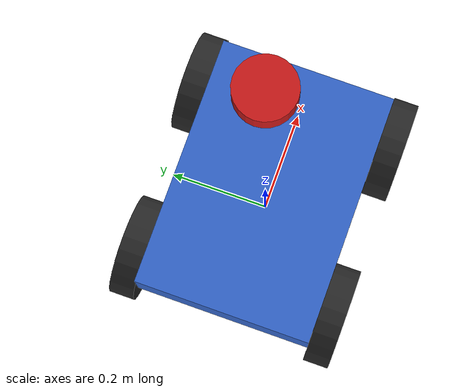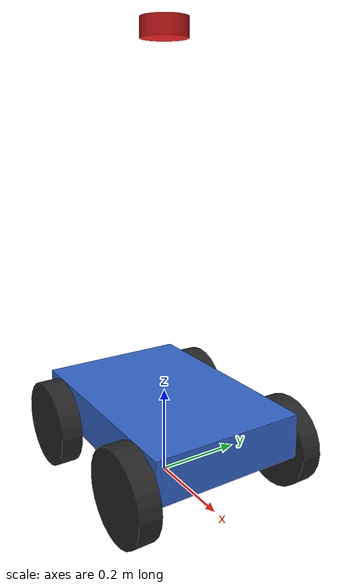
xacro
<?xml version="1.0"?>
<robot name="mecanum_bot" xmlns:xacro="http://www.ros.org/wiki/xacro">

  <!-- ── Materials ──────────────────────────────────────────────── -->
  <material name="blue">
    <color rgba="0.2 0.4 0.8 1.0"/>
  </material>
  <material name="dark_grey">
    <color rgba="0.15 0.15 0.15 1.0"/>
  </material>
  <material name="red">
    <color rgba="0.8 0.1 0.1 1.0"/>
  </material>

  <!-- ── Inertia macros ─────────────────────────────────────────── -->
  <xacro:macro name="box_inertia" params="m x y z">
    <inertial>
      <mass value="${m}"/>
      <inertia
        ixx="${m/12.0*(y*y+z*z)}" ixy="0" ixz="0"
        iyy="${m/12.0*(x*x+z*z)}" iyz="0"
        izz="${m/12.0*(x*x+y*y)}"/>
    </inertial>
  </xacro:macro>

  <xacro:macro name="cylinder_inertia" params="m r h">
    <inertial>
      <mass value="${m}"/>
      <inertia
        ixx="${m/12.0*(3*r*r+h*h)}" ixy="0" ixz="0"
        iyy="${m/12.0*(3*r*r+h*h)}" iyz="0"
        izz="${m/2.0*r*r}"/>
    </inertial>
  </xacro:macro>

  <!-- ── base_footprint (ground projection, Nav2 convention) ───── -->
  <link name="base_footprint"/>

  <joint name="base_footprint_joint" type="fixed">
    <parent link="base_footprint"/>
    <child  link="base_link"/>
    <origin xyz="0 0 0.15" rpy="0 0 0"/>
  </joint>

  <!-- ── Chassis (base_link) ────────────────────────────────────── -->
  <link name="base_link">
    <xacro:box_inertia m="10.0" x="0.5" y="0.35" z="0.1"/>
    <visual>
      <geometry><box size="0.5 0.35 0.1"/></geometry>
      <material name="blue"/>
    </visual>
    <collision>
      <geometry><box size="0.5 0.35 0.1"/></geometry>
    </collision>
  </link>

  <!-- ── Wheel macro ────────────────────────────────────────────── -->
  <xacro:macro name="mecanum_wheel" params="name x y">
    <link name="${name}">
      <xacro:cylinder_inertia m="0.5" r="0.1" h="0.05"/>
      <visual>
        <geometry><cylinder radius="0.1" length="0.05"/></geometry>
        <material name="dark_grey"/>
      </visual>
      <collision>
        <!-- Sphere approximation matches the SDF collision for consistent physics -->
        <geometry><sphere radius="0.1"/></geometry>
      </collision>
    </link>

    <joint name="${name}_joint" type="continuous">
      <parent link="base_link"/>
      <child  link="${name}"/>
      <origin xyz="${x} ${y} -0.05" rpy="-1.5707 0 0"/>
      <axis xyz="0 0 1"/>
    </joint>
  </xacro:macro>

  <xacro:mecanum_wheel name="front_left_wheel"  x=" 0.175" y=" 0.2"/>
  <xacro:mecanum_wheel name="front_right_wheel" x=" 0.175" y="-0.2"/>
  <xacro:mecanum_wheel name="rear_left_wheel"   x="-0.175" y=" 0.2"/>
  <xacro:mecanum_wheel name="rear_right_wheel"  x="-0.175" y="-0.2"/>

  <!-- ── LiDAR ──────────────────────────────────────────────────── -->
  <link name="lidar_link">
    <xacro:cylinder_inertia m="0.1" r="0.05" h="0.04"/>
    <visual>
      <geometry><cylinder radius="0.05" length="0.04"/></geometry>
      <material name="red"/>
    </visual>
    <collision>
      <geometry><cylinder radius="0.05" length="0.04"/></geometry>
    </collision>
  </link>

  <joint name="lidar_joint" type="fixed">
    <parent link="base_link"/>
    <child  link="lidar_link"/>
    <!-- 0.83 m above base_link centre = on top of head (model frame z=0.98) -->
    <origin xyz="0 0 0.83" rpy="0 0 0"/>
  </joint>

</robot>
